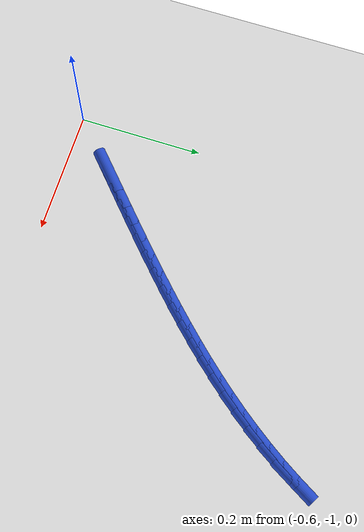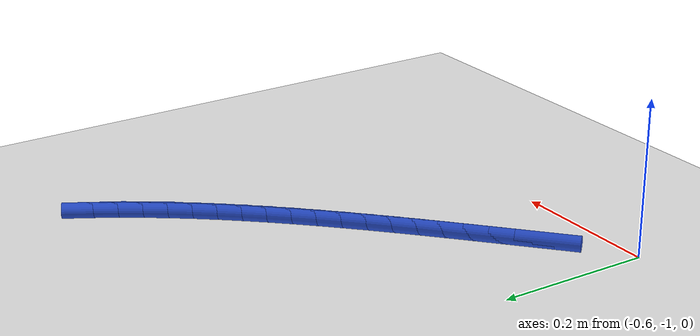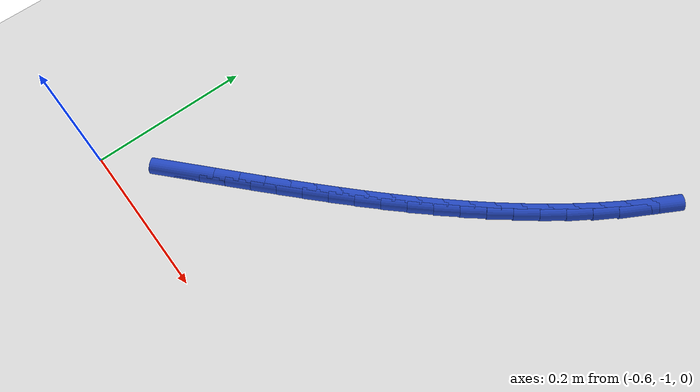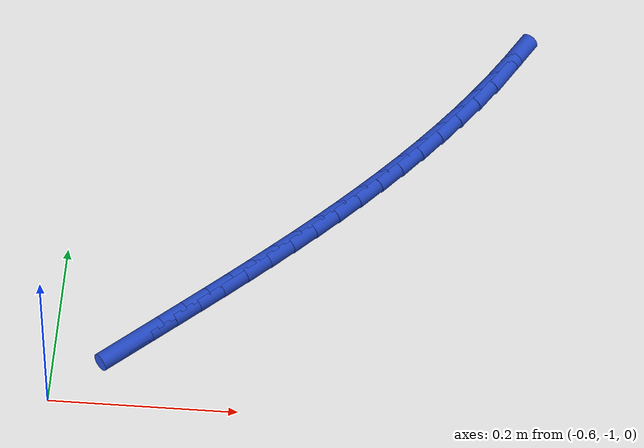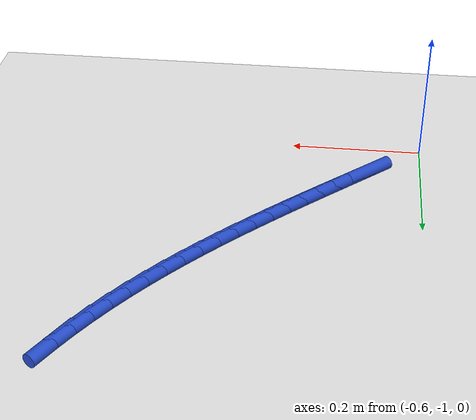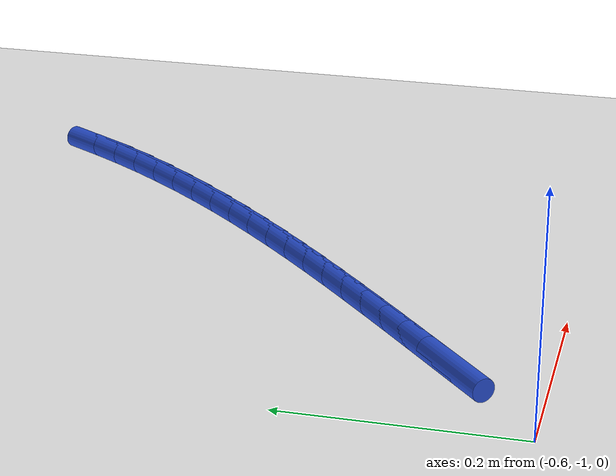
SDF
<sdf version="1.6">
 <world name="default">
  <model name="ground_plane">
   <static>1</static>
   <link name="link">
    <collision name="collision">
     <geometry><plane><normal>0 0 1</normal><size>100 100</size></plane></geometry>
     <surface><friction><ode><mu>100</mu><mu2>50</mu2></ode></friction></surface>
    </collision>
    <visual name="visual">
     <cast_shadows>0</cast_shadows>
     <geometry><plane><normal>0 0 1</normal><size>100 100</size></plane></geometry>
     <material>
      <script><uri>file://media/materials/scripts/gazebo.material</uri><name>Gazebo/WhiteGlow</name></script>
     </material>
    </visual>
   </link>
  </model>
  <model name="line">
   <link name="link_185">
    <pose>-0.5198943541845823 -0.9271616609319099 0.01 0 1.57 0.7387187544406463</pose>
    <collision name="collision">
     <geometry><cylinder><radius>0.01</radius><length>0.08</length></cylinder></geometry>
    </collision>
    <visual name="visual">
     <material>
      <script><name>Gazebo/Blue</name><uri>file://media/materials/scripts/gazebo.material</uri></script>
     </material>
     <geometry><cylinder><radius>0.01</radius><length>0.08</length></cylinder></geometry>
    </visual>
   </link>
   <link name="link_186">
    <pose>-0.49654416114611877 -0.9058956403750824 0.01 0 1.57 0.7389514170638272</pose>
    <collision name="collision">
     <geometry><cylinder><radius>0.01</radius><length>0.08</length></cylinder></geometry>
    </collision>
    <visual name="visual">
     <material>
      <script><name>Gazebo/Blue</name><uri>file://media/materials/scripts/gazebo.material</uri></script>
     </material>
     <geometry><cylinder><radius>0.01</radius><length>0.08</length></cylinder></geometry>
    </visual>
   </link>
   <link name="link_187">
    <pose>-0.47316399756584565 -0.8845923705985888 0.01 0 1.57 0.74109686353202</pose>
    <collision name="collision">
     <geometry><cylinder><radius>0.01</radius><length>0.08</length></cylinder></geometry>
    </collision>
    <visual name="visual">
     <material>
      <script><name>Gazebo/Blue</name><uri>file://media/materials/scripts/gazebo.material</uri></script>
     </material>
     <geometry><cylinder><radius>0.01</radius><length>0.08</length></cylinder></geometry>
    </visual>
   </link>
   <link name="link_188">
    <pose>-0.44980747392350257 -0.8632187479663963 0.01 0 1.57 0.7452406980081242</pose>
    <collision name="collision">
     <geometry><cylinder><radius>0.01</radius><length>0.08</length></cylinder></geometry>
    </collision>
    <visual name="visual">
     <material>
      <script><name>Gazebo/Blue</name><uri>file://media/materials/scripts/gazebo.material</uri></script>
     </material>
     <geometry><cylinder><radius>0.01</radius><length>0.08</length></cylinder></geometry>
    </visual>
   </link>
   <link name="link_189">
    <pose>-0.42653004203663025 -0.841739593882974 0.01 0 1.57 0.751386919783955</pose>
    <collision name="collision">
     <geometry><cylinder><radius>0.01</radius><length>0.08</length></cylinder></geometry>
    </collision>
    <visual name="visual">
     <material>
      <script><name>Gazebo/Blue</name><uri>file://media/materials/scripts/gazebo.material</uri></script>
     </material>
     <geometry><cylinder><radius>0.01</radius><length>0.08</length></cylinder></geometry>
    </visual>
   </link>
   <link name="link_190">
    <pose>-0.4033871537227695 -0.8201197297527916 0.01 0 1.57 0.7595452616809946</pose>
    <collision name="collision">
     <geometry><cylinder><radius>0.01</radius><length>0.08</length></cylinder></geometry>
    </collision>
    <visual name="visual">
     <material>
      <script><name>Gazebo/Blue</name><uri>file://media/materials/scripts/gazebo.material</uri></script>
     </material>
     <geometry><cylinder><radius>0.01</radius><length>0.08</length></cylinder></geometry>
    </visual>
   </link>
   <link name="link_191">
    <pose>-0.380434260799462 -0.7983239769803183 0.01 0 1.57 0.7697304930531667</pose>
    <collision name="collision">
     <geometry><cylinder><radius>0.01</radius><length>0.08</length></cylinder></geometry>
    </collision>
    <visual name="visual">
     <material>
      <script><name>Gazebo/Blue</name><uri>file://media/materials/scripts/gazebo.material</uri></script>
     </material>
     <geometry><cylinder><radius>0.01</radius><length>0.08</length></cylinder></geometry>
    </visual>
   </link>
   <link name="link_192">
    <pose>-0.3577268150842482 -0.7763171569700237 0.01 0 1.57 0.7819614958361354</pose>
    <collision name="collision">
     <geometry><cylinder><radius>0.01</radius><length>0.08</length></cylinder></geometry>
    </collision>
    <visual name="visual">
     <material>
      <script><name>Gazebo/Blue</name><uri>file://media/materials/scripts/gazebo.material</uri></script>
     </material>
     <geometry><cylinder><radius>0.01</radius><length>0.08</length></cylinder></geometry>
    </visual>
   </link>
   <link name="link_193">
    <pose>-0.335320268394669 -0.7540640911263766 0.01 0 1.57 0.7962600853313906</pose>
    <collision name="collision">
     <geometry><cylinder><radius>0.01</radius><length>0.08</length></cylinder></geometry>
    </collision>
    <visual name="visual">
     <material>
      <script><name>Gazebo/Blue</name><uri>file://media/materials/scripts/gazebo.material</uri></script>
     </material>
     <geometry><cylinder><radius>0.01</radius><length>0.08</length></cylinder></geometry>
    </visual>
   </link>
   <link name="link_194">
    <pose>-0.31327007254826533 -0.7315296008538469 0.01 0 1.57 0.8126495432919542</pose>
    <collision name="collision">
     <geometry><cylinder><radius>0.01</radius><length>0.08</length></cylinder></geometry>
    </collision>
    <visual name="visual">
     <material>
      <script><name>Gazebo/Blue</name><uri>file://media/materials/scripts/gazebo.material</uri></script>
     </material>
     <geometry><cylinder><radius>0.01</radius><length>0.08</length></cylinder></geometry>
    </visual>
   </link>
   <link name="link_195">
    <pose>-0.2916316793625776 -0.7086785075569029 0.01 0 1.57 0.8311528301393503</pose>
    <collision name="collision">
     <geometry><cylinder><radius>0.01</radius><length>0.08</length></cylinder></geometry>
    </collision>
    <visual name="visual">
     <material>
      <script><name>Gazebo/Blue</name><uri>file://media/materials/scripts/gazebo.material</uri></script>
     </material>
     <geometry><cylinder><radius>0.01</radius><length>0.08</length></cylinder></geometry>
    </visual>
   </link>
   <link name="link_196">
    <pose>-0.2704605406551477 -0.6854756326400149 0.01 0 1.57 0.8517904471725624</pose>
    <collision name="collision">
     <geometry><cylinder><radius>0.01</radius><length>0.08</length></cylinder></geometry>
    </collision>
    <visual name="visual">
     <material>
      <script><name>Gazebo/Blue</name><uri>file://media/materials/scripts/gazebo.material</uri></script>
     </material>
     <geometry><cylinder><radius>0.01</radius><length>0.08</length></cylinder></geometry>
    </visual>
   </link>
   <link name="link_197">
    <pose>-0.24981210824351616 -0.6618857975076522 0.01 0 1.57 0.8745779301092278</pose>
    <collision name="collision">
     <geometry><cylinder><radius>0.01</radius><length>0.08</length></cylinder></geometry>
    </collision>
    <visual name="visual">
     <material>
      <script><name>Gazebo/Blue</name><uri>file://media/materials/scripts/gazebo.material</uri></script>
     </material>
     <geometry><cylinder><radius>0.01</radius><length>0.08</length></cylinder></geometry>
    </visual>
   </link>
   <link name="link_198">
    <pose>-0.2297418339452237 -0.6378738235642838 0.01 0 1.57 0.8995229740698515</pose>
    <collision name="collision">
     <geometry><cylinder><radius>0.01</radius><length>0.08</length></cylinder></geometry>
    </collision>
    <visual name="visual">
     <material>
      <script><name>Gazebo/Blue</name><uri>file://media/materials/scripts/gazebo.material</uri></script>
     </material>
     <geometry><cylinder><radius>0.01</radius><length>0.08</length></cylinder></geometry>
    </visual>
   </link>
   <link name="link_199">
    <pose>-0.21030516957781079 -0.6134045322143781 0.01 0 1.57 0.9266222188796269</pose>
    <collision name="collision">
     <geometry><cylinder><radius>0.01</radius><length>0.08</length></cylinder></geometry>
    </collision>
    <visual name="visual">
     <material>
      <script><name>Gazebo/Blue</name><uri>file://media/materials/scripts/gazebo.material</uri></script>
     </material>
     <geometry><cylinder><radius>0.01</radius><length>0.08</length></cylinder></geometry>
    </visual>
   </link>
   <link name="link_200">
    <pose>-0.19155756695881937 -0.5884427448624061 0.01 0 1.57 0.9558577633861687</pose>
    <collision name="collision">
     <geometry><cylinder><radius>0.01</radius><length>0.08</length></cylinder></geometry>
    </collision>
    <visual name="visual">
     <material>
      <script><name>Gazebo/Blue</name><uri>file://media/materials/scripts/gazebo.material</uri></script>
     </material>
     <geometry><cylinder><radius>0.01</radius><length>0.08</length></cylinder></geometry>
    </visual>
   </link>
   <link name="link_201">
    <pose>-0.17355447790578984 -0.5629532829128363 0.01 0 1.57 0.9871922939464998</pose>
    <collision name="collision">
     <geometry><cylinder><radius>0.01</radius><length>0.08</length></cylinder></geometry>
    </collision>
    <visual name="visual">
     <material>
      <script><name>Gazebo/Blue</name><uri>file://media/materials/scripts/gazebo.material</uri></script>
     </material>
     <geometry><cylinder><radius>0.01</radius><length>0.08</length></cylinder></geometry>
    </visual>
   </link>
   <link name="link_202">
    <pose>-0.15635132861263332 -0.5369009988884006 0.01 0 1.57 1.0199407809890098</pose>
    <collision name="collision">
     <geometry><cylinder><radius>0.01</radius><length>0.08</length></cylinder></geometry>
    </collision>
    <visual name="visual">
     <material>
      <script><name>Gazebo/Blue</name><uri>file://media/materials/scripts/gazebo.material</uri></script>
     </material>
     <geometry><cylinder><radius>0.01</radius><length>0.08</length></cylinder></geometry>
    </visual>
   </link>
   <link name="link_203">
    <pose>-0.13999036450745572 -0.5102667525105242 0.01 0 1.57 1.0524218035796282</pose>
    <collision name="collision">
     <geometry><cylinder><radius>0.01</radius><length>0.08</length></cylinder></geometry>
    </collision>
    <visual name="visual">
     <material>
      <script><name>Gazebo/Blue</name><uri>file://media/materials/scripts/gazebo.material</uri></script>
     </material>
     <geometry><cylinder><radius>0.01</radius><length>0.08</length></cylinder></geometry>
    </visual>
   </link>
  </model>
 </world>
</sdf>
